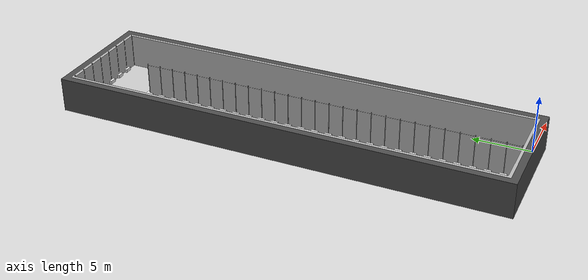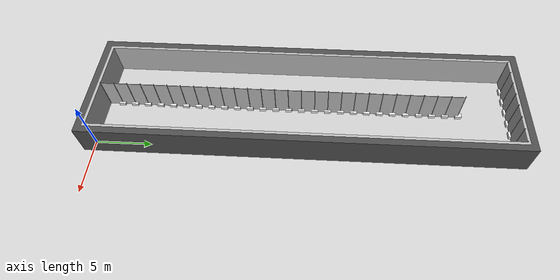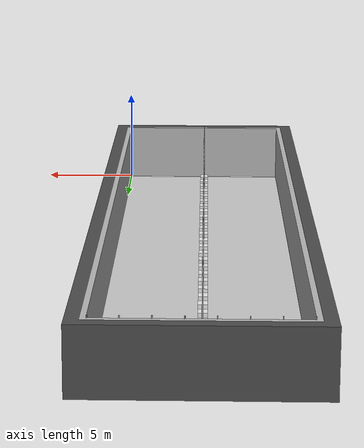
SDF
<?xml version="1.0" ?>
<sdf version="1.4">
  <model name="gamezone">
    <static>true</static>

    <link name="walls">
      <pose>0 0 0 0 0 0</pose>
      <collision name="collision">
        <geometry>
          <mesh>
            <uri>model://gamezone/meshes/walls.STL</uri>
          </mesh>
        </geometry>
      </collision>
      <visual name="visual">
        <geometry>
          <mesh>
            <uri>model://gamezone/meshes/walls.STL</uri>
          </mesh>
        </geometry>
        <material>
          <script>
            <uri>model://gamezone/materials/scripts</uri>
            <uri>model://gamezone/materials/textures</uri>
            <name>Croc/Wall</name>
          </script>
        </material>
      </visual>
    </link>

    <link name="sticks">
      <pose>0 0 0 0 0 0</pose>
      <collision name="collision">
        <geometry>
          <mesh>
            <uri>model://gamezone/meshes/sticks.STL</uri>
          </mesh>
        </geometry>
      </collision>
      <visual name="visual">
        <geometry>
          <mesh>
            <uri>model://gamezone/meshes/sticks.STL</uri>
          </mesh>
        </geometry>
        <material>
          <script>
            <name>Gazebo/Grey</name>
          </script>
        </material>
      </visual>
    </link>

    <link name="bricks">
      <pose>0 0 0 0 0 0</pose>
      <collision name="collision">
        <geometry>
          <mesh>
            <uri>model://gamezone/meshes/bricks.STL</uri>
          </mesh>
        </geometry>
      </collision>
      <visual name="visual">
        <geometry>
          <mesh>
            <uri>model://gamezone/meshes/bricks.STL</uri>
          </mesh>
        </geometry>
        <material>
          <script>
            <name>Gazebo/White</name>
          </script>
        </material>
      </visual>
    </link>

    <link name="ground">
	<pose>-4.5 19 0 0 0 0</pose>
      <collision name="collision">
        <geometry>
          <plane>
            <normal>0 0 1</normal>
            <size>10 38</size>
          </plane>
        </geometry>
        <surface>
          <friction>
            <ode>
              <mu>100</mu>
              <mu2>50</mu2>
            </ode>
          </friction>
        </surface>
      </collision>
      <visual name="visual">
        <cast_shadows>true</cast_shadows>
        <geometry>
          <plane>
            <normal>0 0 1</normal>
            <size>10 38</size>
          </plane>
        </geometry>
        <material>
          <script>
            <uri>model://gamezone/materials/scripts</uri>
            <uri>model://gamezone/materials/textures</uri>
            <name>Croc/Floor</name>
          </script>
        </material>
      </visual>
    </link>

     <link name="outside">
      <pose>0 0 0 0 0 0</pose>
      <collision name="collision">
        <geometry>
          <mesh>
            <uri>model://gamezone/meshes/outside.STL</uri>
          </mesh>
        </geometry>
      </collision>
      <visual name="visual">
        <geometry>
          <mesh>
            <uri>model://gamezone/meshes/outside.STL</uri>
          </mesh>
        </geometry>
        <material>
          <script>
            <name>Gazebo/DarkGrey</name>
          </script>
        </material>
      </visual>
    </link>

  </model>
</sdf>
